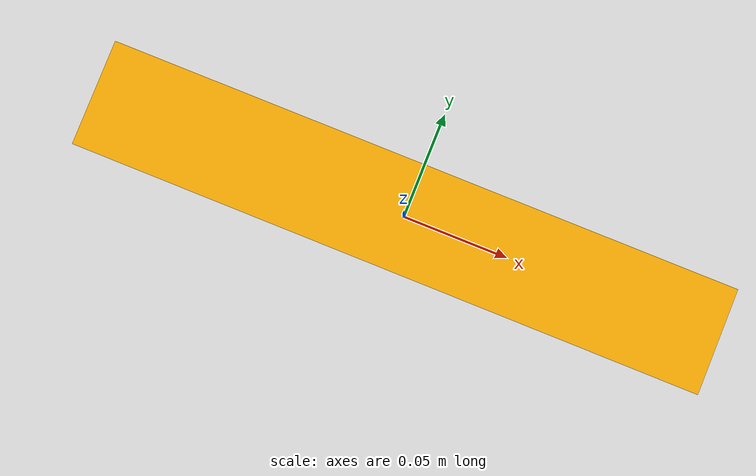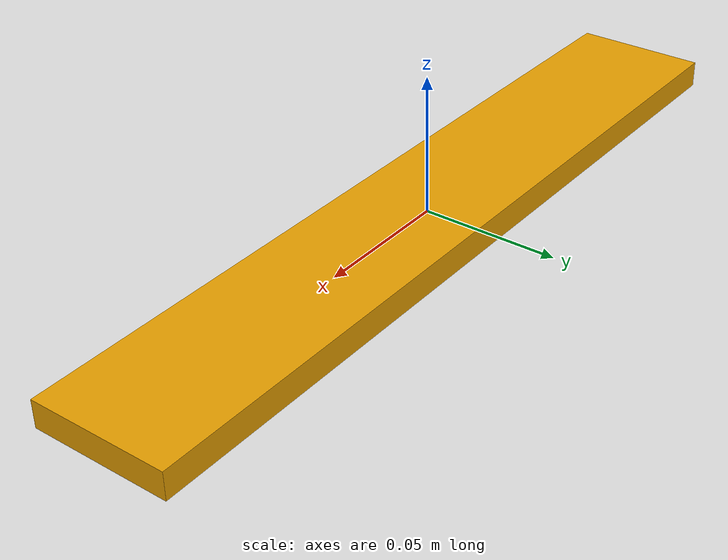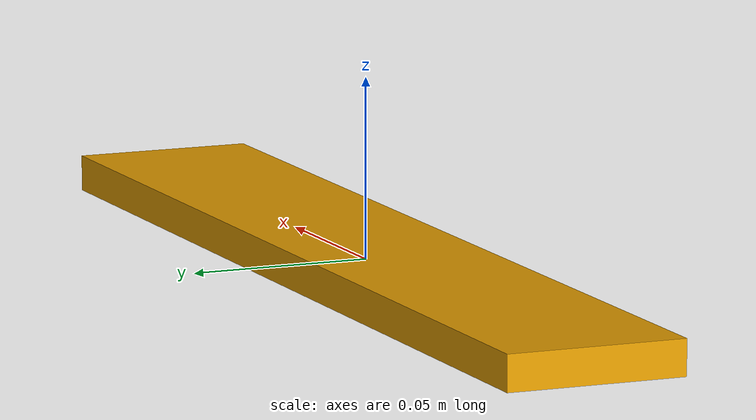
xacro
<?xml version="1.0"?>
<robot name="mount_for_tool"
       xmlns:xacro="http://ros.org/wiki/xacro">

  <!-- Constants for robot dimensions -->
  <xacro:property name="mount_width" value=".05" />
  <xacro:property name="mount_length" value=".3" />
  <xacro:property name="mount_height" value=".01" />
  <xacro:property name="mount_mass" value=".15" />

  <!-- Macro for cuboid mass moment of inertia -->
  <xacro:macro name="cuboid_moment_of_inertia" params="m d1 d2 d3">
    <inertia ixx="${m * (d2 * d2 + d3 * d3) / 12}" ixy="0.0" ixz="0.0"
	     iyy="${m * (d1 * d1 + d3 * d3) / 12}" iyz="0.0"
	     izz="${m * (d1 * d1 + d2 * d2) / 12}" />
  </xacro:macro>

  <!-- Mount link -->
  <link name="mount_link">
    <visual name="visual">
      <geometry>
	<box size="${mount_length} ${mount_width} ${mount_height}" />
      </geometry>
    </visual>

    <collision name="collision">
      <geometry>
	<box size="${mount_length} ${mount_width} ${mount_height}" />
      </geometry>
    </collision>

    <inertial>
      <mass value="${mount_mass}" />
      <xacro:cuboid_moment_of_inertia m="${mount_mass}" d1="${mount_length}" d2="${mount_width}" d3="${mount_height}" />
    </inertial>
  </link>

</robot>
